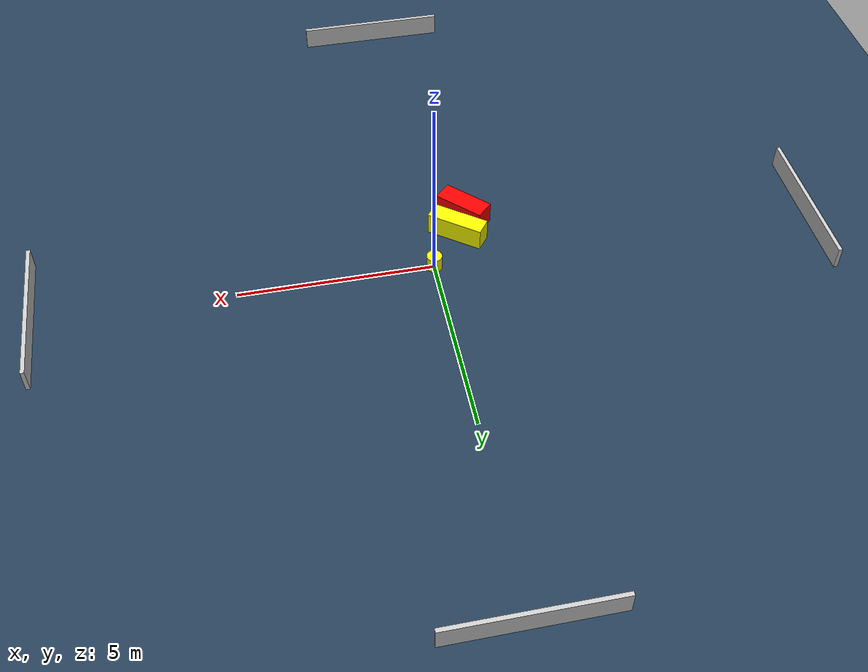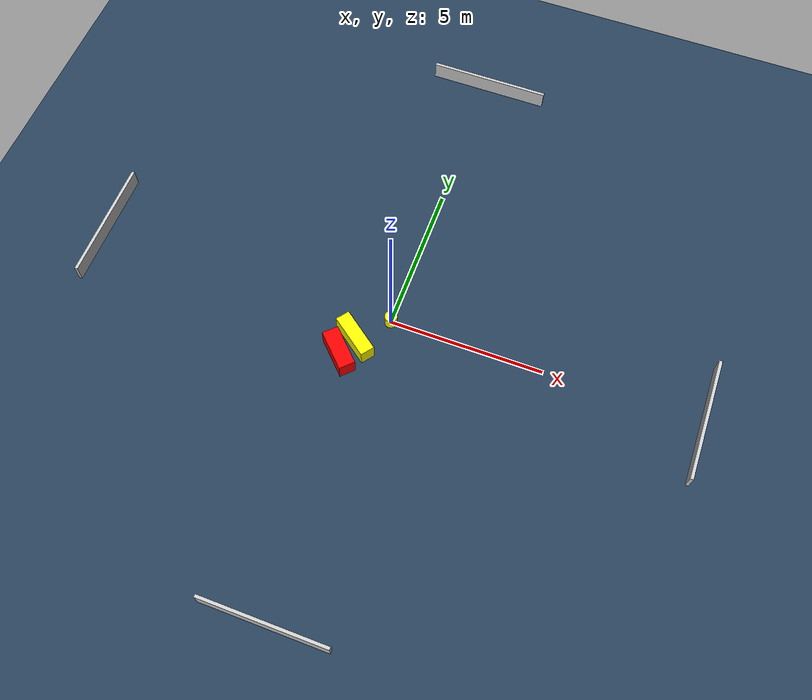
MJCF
<?xml version="1.0" ?>
<mujoco model="generated_environment">
  <option timestep="0.01" integrator="RK4" cone="elliptic"/>
  <default>
    <geom density="1"/>
  </default>
  <asset>
    <texture builtin="gradient" height="3072" name="skybox" rgb1="0.3 0.5 0.7" rgb2="0 0 0" type="skybox" width="512"/>
    <texture builtin="checker" height="300" name="groundplane" rgb1="0.2 0.3 0.4" rgb2="0.1 0.2 0.3" type="2d" width="300"/>
    <material name="groundplane" reflectance="0.2" texrepeat="5 5" texture="groundplane"/>
  </asset>
  <worldbody>
    <light dir="0 0 -1" directional="true" pos="0 0 1.5"/>
    <geom condim="3" friction="0.5 0.005 0.001" material="groundplane" name="floor" pos="0 0 0" size="0 0 0.05" type="plane"/>
    <body name="walls">
      <geom name="wall_1" condim="4" pos="-10.0 0.0 0.3" rgba="0.800000011920929 0.800000011920929 0.800000011920929 1.0" size="0.05 2.0 0.3" type="box"/>
      <geom name="wall_2" condim="4" pos="10.0 0.0 0.3" rgba="0.800000011920929 0.800000011920929 0.800000011920929 1.0" size="0.05 2.0 0.3" type="box"/>
      <geom name="wall_3" condim="4" pos="0.0 -10.0 0.3" rgba="0.800000011920929 0.800000011920929 0.800000011920929 1.0" size="2.0 0.05 0.3" type="box"/>
      <geom name="wall_4" condim="4" pos="0.0 10.0 0.3" rgba="0.800000011920929 0.800000011920929 0.800000011920929 1.0" size="2.0 0.05 0.3" type="box"/>
    </body>
    <body name="robot">
      <joint name="joint_x" type="slide" pos="0 0 0" axis="1 0 0"/>
      <joint name="joint_y" type="slide" pos="0 0 0" axis="0 1 0"/>
      <geom name="robot" type="cylinder" pos="0.0 0.0 0.2" size="0.2 0.2 0.0" mass="5.0" friction="1.0 0.005 0.0001" condim="4" rgba="1.0 1.0 0.0 1.0"/>
    </body>
    <body name="obstacle_1_movable">
      <geom name="obstacle_1_movable" condim="4" pos="-0.8140173410602773 -1.0203020868529715 0.3" euler="0 0 53.122087657220135" friction="0.0 0.005 0.001" rgba="1.0 1.0 0.0 1.0" size="0.23269098471900687 0.7393269659634347 0.3" type="box" mass="0.1"/>
      <joint type="free"/>
    </body>
    <body name="obstacle_2_static">
      <geom name="obstacle_2_static" condim="4" pos="-1.1068529527153677 -1.6526208518467211 0.3" euler="0 0 224.98528948658196" friction="0.0 0.005 0.001" rgba="1.0 0.0 0.0 1.0" size="0.2631387971501905 0.6672665811126494 0.3" type="box"/>
    </body>
  </worldbody>
  <actuator>
    <motor name="actuator_x" joint="joint_x" gear="1" ctrlrange="-1 1"/>
    <motor name="actuator_y" joint="joint_y" gear="1" ctrlrange="-1 1"/>
  </actuator>
</mujoco>
